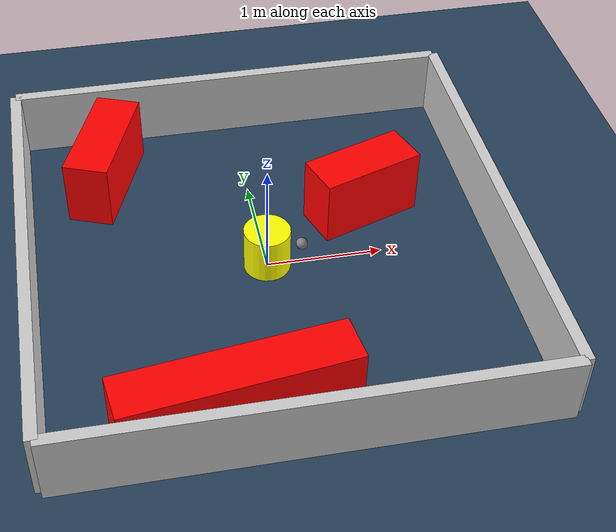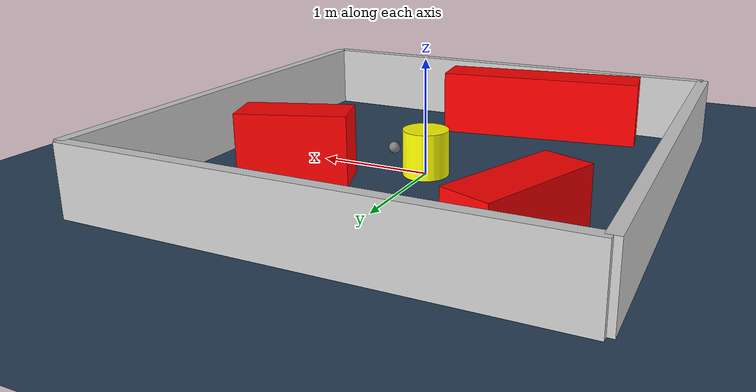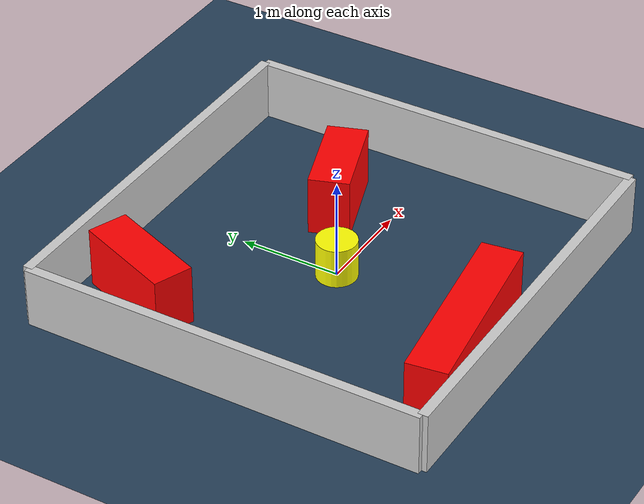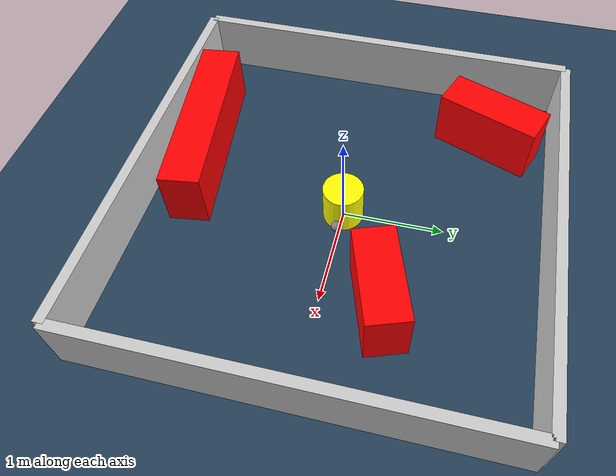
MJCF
<?xml version="1.0" ?>
<mujoco model="generated_environment">
  <option timestep="0.01" integrator="RK4" cone="elliptic"/>
  <default>
    <geom density="1"/>
  </default>
  <asset>
    <texture builtin="gradient" height="3072" rgb1="0.3 0.5 0.7" rgb2="0 0 0" type="skybox" width="512"/>
    <texture builtin="checker" height="300" mark="edge" markrgb="0.8 0.8 0.8" name="groundplane" rgb1="0.2 0.3 0.4" rgb2="0.1 0.2 0.3" type="2d" width="300"/>
    <material name="groundplane" reflectance="0.2" texrepeat="5 5" texture="groundplane" texuniform="true"/>
    <material name="robot" rgba="0.0 1.0 0.0 1"/>
  </asset>
  <worldbody>
    <light dir="0 0 -1" directional="true" pos="0 0 1.5"/>
    <geom condim="4" friction="1.0 0.005 0.001" material="groundplane" name="floor" size="0 0 0.05" type="plane"/>
    <body name="walls">
      <geom name="wall_1" condim="4" pos="-2.0 0.0 0.3" rgba="0.800000011920929 0.800000011920929 0.800000011920929 1.0" size="0.05 2.0 0.3" type="box"/>
      <geom name="wall_2" condim="4" pos="2.0 0.0 0.3" rgba="0.800000011920929 0.800000011920929 0.800000011920929 1.0" size="0.05 2.0 0.3" type="box"/>
      <geom name="wall_3" condim="4" pos="0.0 -2.0 0.3" rgba="0.800000011920929 0.800000011920929 0.800000011920929 1.0" size="2.0 0.05 0.3" type="box"/>
      <geom name="wall_4" condim="4" pos="0.0 2.0 0.3" rgba="0.800000011920929 0.800000011920929 0.800000011920929 1.0" size="2.0 0.05 0.3" type="box"/>
    </body>
    <body name="robot">
      <joint name="joint_x" type="slide" pos="0 0 0" axis="1 0 0"/>
      <joint name="joint_y" type="slide" pos="0 0 0" axis="0 1 0"/>
      <geom name="robot" type="sphere" pos="0.3 0.0 0.2" size="0.05" mass="5." friction="1.0 0.005 0.0001" condim="4" rgba="0.5 0.5 0.5 1.0"/>
      <site name="sensor_ball"/>
    </body>
    <body name="obstacle_movable_1">
      <geom name="obstacle_movable_1" condim="4" pos="0.0 0.0 0.2" euler="0 0 0.0" friction="1.0 0.005 0.001" rgba="1.0 1.0 0.0 1.0" size="0.2 0.2 0.0" type="cylinder" mass="0.1"/>
      <joint type="free"/>
    </body>
    <body name="obstacle_2_static">
      <geom name="obstacle_2_static" condim="4" pos="0.9451863844873856 0.5402430309706243 0.3" euler="0 0 199.24107264573826" friction="1.0 0.005 0.001" rgba="1 0 0 1" size="0.465081179879196 0.2 0.3" type="box"/>
    </body>
    <body name="obstacle_3_static">
      <geom name="obstacle_3_static" condim="4" pos="-1.2587996847637255 1.305766468321403 0.3" euler="0 0 248.6976319165086" friction="1.0 0.005 0.001" rgba="1 0 0 1" size="0.5187732444146393 0.2 0.3" type="box"/>
    </body>
    <body name="obstacle_4_static">
      <geom name="obstacle_4_static" condim="4" pos="-0.5201681605462823 -1.6044140710292074 0.3" euler="0 0 7.599999689482497" friction="1.0 0.005 0.001" rgba="1 0 0 1" size="0.9399287543764423 0.2 0.3" type="box"/>
    </body>
  </worldbody>
  <actuator>
    <motor name="actuator_x" joint="joint_x" gear="1" ctrlrange="-1 1"/>
    <motor name="actuator_y" joint="joint_y" gear="1" ctrlrange="-1 1"/>
  </actuator>
</mujoco>
